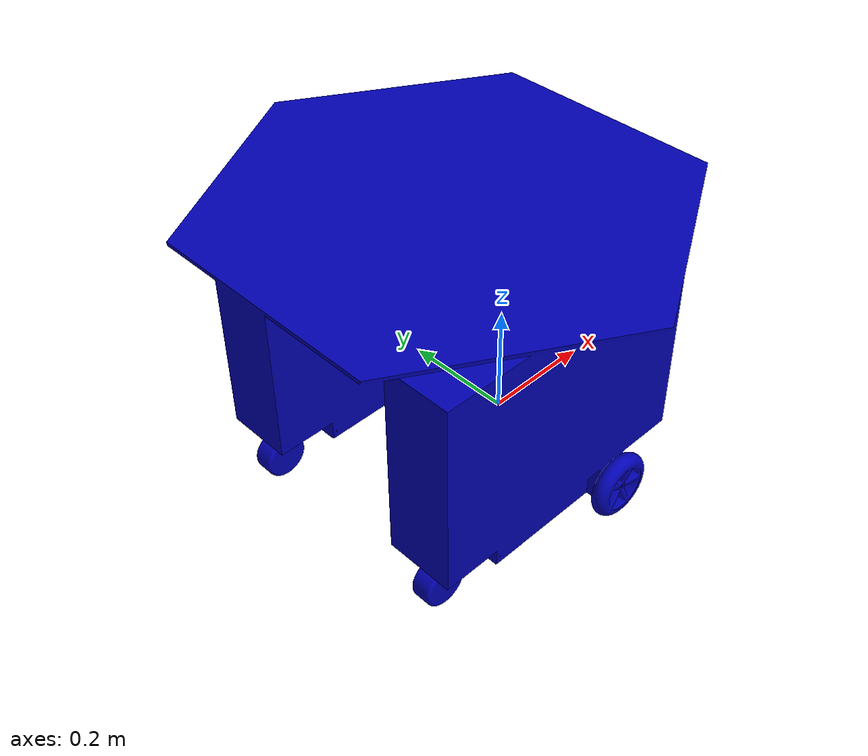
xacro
<?xml version="1.0" ?>
<robot name="robot3"
  xmlns:xacro="http://www.ros.org/wiki/xacro">

  <xacro:include filename="$(find hive_gazebo)/urdf/robot3/robot3_materials.xacro"/>
  <xacro:include filename="$(find hive_gazebo)/urdf/robot3/robot3.trans"/>
  <xacro:include filename="$(find hive_gazebo)/urdf/robot3/robot3.gazebo"/>

  <link name="robot3_base_link">
    <inertial>
      <origin xyz="-0.10420283159261519 -6.650792304374791e-05 0.2749529701185766" rpy="0 0 0"/>
      <mass value="40.0"/>
      <inertia ixx="6.809657" iyy="6.121132" izz="6.33059" ixy="0.000377" iyz="-0.000479" ixz="0.18348"/>
    </inertial>
    <visual>
      <origin xyz="0 0 0" rpy="0 0 0"/>
      <geometry>
        <mesh filename="file://$(find hive_gazebo)/meshes/robots/base_link.stl" scale="0.001 0.001 0.001"/>
      </geometry>
      <material name="blue"/>
    </visual>
    <collision>
      <origin xyz="0 0 0" rpy="0 0 0"/>
      <geometry>
        <mesh filename="file://$(find hive_gazebo)/meshes/robots/base_link.stl" scale="0.001 0.001 0.001"/>
      </geometry>
    </collision>
  </link>

  <link name="robot3_left_wheel">
    <inertial>
      <origin xyz="2.6594023369474935e-07 -0.006200652298741449 -4.894162568547244e-09" rpy="0 0 0"/>
      <mass value="1.3260899817774452"/>
      <inertia ixx="0.001415" iyy="0.002676" izz="0.001415" ixy="-0.0" iyz="0.0" ixz="0.0"/>
    </inertial>
    <visual>
      <origin xyz="1e-06 -0.277578 0.0" rpy="0 0 0"/>
      <geometry>
        <mesh filename="file://$(find hive_gazebo)/meshes/robots/left_wheel_1.stl" scale="0.001 0.001 0.001"/>
      </geometry>
      <material name="blue"/>
    </visual>
    <collision>
      <origin xyz="1e-06 -0.277578 0.0" rpy="0 0 0"/>
      <geometry>
        <mesh filename="file://$(find hive_gazebo)/meshes/robots/left_wheel_1.stl" scale="0.001 0.001 0.001"/>
      </geometry>
    </collision>
  </link>

  <link name="robot3_right_wheel">
    <inertial>
      <origin xyz="2.5883027950490597e-07 0.006201095560612602 -2.8975644106310483e-10" rpy="0 0 0"/>
      <mass value="1.3260894987915728"/>
      <inertia ixx="0.001415" iyy="0.002676" izz="0.001415" ixy="-0.0" iyz="0.0" ixz="-0.0"/>
    </inertial>
    <visual>
      <origin xyz="1e-06 0.269222 0.0" rpy="0 0 0"/>
      <geometry>
        <mesh filename="file://$(find hive_gazebo)/meshes/robots/right_wheel_1.stl" scale="0.001 0.001 0.001"/>
      </geometry>
      <material name="blue"/>
    </visual>
    <collision>
      <origin xyz="1e-06 0.269222 0.0" rpy="0 0 0"/>
      <geometry>
        <mesh filename="file://$(find hive_gazebo)/meshes/robots/right_wheel_1.stl" scale="0.001 0.001 0.001"/>
      </geometry>
    </collision>
  </link>

  <link name="robot3_right_caster">
    <inertial>
      <origin xyz="-0.017519612985357313 2.0677910783639675e-07 -0.05240105157186727" rpy="0 0 0"/>
      <mass value="1.6117875662608887"/>
      <inertia ixx="0.001424" iyy="0.001841" izz="0.000923" ixy="-0.0" iyz="-0.0" ixz="-0.000298"/>
    </inertial>
    <visual>
      <origin xyz="0.310001 0.185822 -0.043" rpy="0 0 0"/>
      <geometry>
        <mesh filename="file://$(find hive_gazebo)/meshes/robots/right_caster_1.stl" scale="0.001 0.001 0.001"/>
      </geometry>
      <material name="blue"/>
    </visual>
    <collision>
      <origin xyz="0.310001 0.185822 -0.043" rpy="0 0 0"/>
      <geometry>
        <mesh filename="file://$(find hive_gazebo)/meshes/robots/right_caster_1.stl" scale="0.001 0.001 0.001"/>
      </geometry>
    </collision>
  </link>

  <link name="robot3_left_caster">
    <inertial>
      <origin xyz="-0.017519612985357313 2.0677910747557426e-07 -0.05240105157186712" rpy="0 0 0"/>
      <mass value="1.6117875662608847"/>
      <inertia ixx="0.001424" iyy="0.001841" izz="0.000923" ixy="-0.0" iyz="-0.0" ixz="-0.000298"/>
    </inertial>
    <visual>
      <origin xyz="0.310001 -0.194178 -0.043" rpy="0 0 0"/>
      <geometry>
        <mesh filename="file://$(find hive_gazebo)/meshes/robots/left_caster_1.stl" scale="0.001 0.001 0.001"/>
      </geometry>
      <material name="blue"/>
    </visual>
    <collision>
      <origin xyz="0.310001 -0.194178 -0.043" rpy="0 0 0"/>
      <geometry>
        <mesh filename="file://$(find hive_gazebo)/meshes/robots/left_caster_1.stl" scale="0.001 0.001 0.001"/>
      </geometry>
    </collision>
  </link>

  <link name="robot3_lidar_link">
    <inertial>
      <origin xyz="-0.0005135302448306955 -0.0001199429580434408 0.02218628196103728" rpy="0 0 0"/>
      <mass value="1.4419128562477859"/>
      <inertia ixx="0.000731" iyy="0.000735" izz="0.000958" ixy="3e-06" iyz="2e-06" ixz="8e-06"/>
    </inertial>
    <visual>
      <origin xyz="0.12 0.0 -0.395" rpy="0 0 0"/>
      <geometry>
        <mesh filename="file://$(find hive_gazebo)/meshes/robots/lidar_link_1.stl" scale="0.001 0.001 0.001"/>
      </geometry>
      <material name="blue"/>
    </visual>
    <collision>
      <origin xyz="0.12 0.0 -0.395" rpy="0 0 0"/>
      <geometry>
        <mesh filename="file://$(find hive_gazebo)/meshes/robots/lidar_link_1.stl" scale="0.001 0.001 0.001"/>
      </geometry>
    </collision>
  </link>

  <link name="robot3_imu_link"/>

  <joint name="robot3_imu_joint" type="fixed">
    <origin xyz="-0.12 0 0.5" rpy="0 0 0"/>
    <parent link="robot3_base_link"/>
    <child link="robot3_imu_link"/>
  </joint>

  <joint name="robot3_left_wheel_joint" type="continuous">
    <origin xyz="-1e-06 0.2734 0.0" rpy="0 0 0"/>
    <parent link="robot3_base_link"/>
    <child link="robot3_left_wheel"/>
    <axis xyz="0.0 1.0 0.0"/>
  </joint>

  <joint name="robot3_right_wheel_joint" type="continuous">
    <origin xyz="-1e-06 -0.2734 0.0" rpy="0 0 0"/>
    <parent link="robot3_base_link"/>
    <child link="robot3_right_wheel"/>
    <axis xyz="0.0 1.0 0.0"/>
  </joint>

  <joint name="robot3_right_caster_joint" type="fixed">
    <origin xyz="-0.31 -0.19 0.043" rpy="0 0 0"/>
    <parent link="robot3_base_link"/>
    <child link="robot3_right_caster"/>
    <axis xyz="0.0 0.0 -1.0"/>
  </joint>

  <joint name="robot3_left_caster_joint" type="fixed">
    <origin xyz="-0.31 0.19 0.043" rpy="0 0 0"/>
    <parent link="robot3_base_link"/>
    <child link="robot3_left_caster"/>
    <axis xyz="0.0 0.0 -1.0"/>
  </joint>

  <joint name="robot3_lidar_joint" type="fixed">
    <origin xyz="-0.12 0.0 0.405" rpy="0 0 0"/>
    <parent link="robot3_base_link"/>
    <child link="robot3_lidar_link"/>
    <axis xyz="-0.0 -0.0 1.0"/>
  </joint>

</robot>

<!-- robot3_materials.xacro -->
<robot name="robot3" xmlns:xacro="http://www.ros.org/wiki/xacro" >

<material name="blue">
  <color rgba="0.000 0.000 0.700 1.000"/>
</material>

</robot>

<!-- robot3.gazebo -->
<robot name="robot3"
  xmlns:xacro="http://www.ros.org/wiki/xacro">

  <xacro:property name="body_color" value="Gazebo/Blue"/>

  <gazebo>
    <plugin name="control" filename="libgazebo_ros_control.so"/>
    <plugin name='robot3_diff_drive' filename='libgazebo_ros_diff_drive.so'>
      <ros>
        <!--cmd_vel and odom name remap-->
        <remapping>cmd_vel:=/robot3/cmd_vel</remapping>
        <remapping>odom:=/robot3/odom</remapping>
      </ros>

      <!-- Wheel Information -->
      <left_joint>robot3_left_wheel_joint</left_joint>
      <right_joint>robot3_right_wheel_joint</right_joint>
      <wheel_separation>0.5336</wheel_separation>
      <wheel_diameter>0.115</wheel_diameter>

      <!-- Limits -->
      <max_wheel_torque>200</max_wheel_torque>
      <max_wheel_acceleration>10.0</max_wheel_acceleration>

      <!-- Output -->
      <odometry_frame>robot3_odom</odometry_frame>
      <robot_base_frame>robot3_base_link</robot_base_frame>

      <publish_odom>true</publish_odom>
      <publish_odom_tf>true</publish_odom_tf>
      <publish_wheel_tf>true</publish_wheel_tf>
    </plugin>
  </gazebo>

  <gazebo reference="robot3_lidar_link">
    <sensor name="laser" type="ray">
      <pose> 0 0 0 0 0 0 </pose>
      <always_on>true</always_on>
      <visualize>true</visualize>
      <update_rate>10</update_rate>
      <ray>
        <scan>
          <horizontal>
            <samples>360</samples>
            <min_angle>-3.141592</min_angle>
            <max_angle>3.141592</max_angle>
          </horizontal>
        </scan>
        <range>
          <min>0.1</min>
          <max>12</max>
        </range>
      </ray>
      <plugin name="robot3_laser_controller" filename="libgazebo_ros_ray_sensor.so">
        <ros>
          <remapping>~/out:=/robot3/scan</remapping>
        </ros>
        <output_type>sensor_msgs/LaserScan</output_type>
        <frame_name>robot3_lidar_link</frame_name>
      </plugin>
    </sensor>
  </gazebo>

  <gazebo reference="robot3_imu_link">
    <gravity>true</gravity>
    <sensor name="imu_sensor" type="imu">
      <always_on>true</always_on>
      <update_rate>100</update_rate>
      <visualize>true</visualize>
      <topic>__default_topic__</topic>
      <plugin name="robot3_imu_plugin" filename="libgazebo_ros_imu_sensor.so">
        <ros>
          <remapping>~/out:=/robot3/imu</remapping>
        </ros>
        <bodyName>robot3_imu_link</bodyName>
        <updateRateHZ>10.0</updateRateHZ>
        <gaussianNoise>0.0</gaussianNoise>
        <xyzOffset>0 0 0</xyzOffset>
        <rpyOffset>0 0 0</rpyOffset>
        <frameName>robot3_imu_link</frameName>
        <initialOrientationAsReference>false</initialOrientationAsReference>
      </plugin>
      <pose>0 0 0 0 0 0</pose>
    </sensor>
  </gazebo>

  <gazebo reference="robot3_base_link">
    <material>${body_color}</material>
    <self_collide>true</self_collide>
    <gravity>true</gravity>
  </gazebo>

  <gazebo reference="robot3_left_wheel">
    <material>${body_color}</material>
    <mu1>1.0</mu1>
    <mu2>1.0</mu2>
    <self_collide>true</self_collide>
  </gazebo>

  <gazebo reference="robot3_right_wheel">
    <material>${body_color}</material>
    <mu1>1.0</mu1>
    <mu2>1.0</mu2>
    <self_collide>true</self_collide>
  </gazebo>

  <gazebo reference="robot3_right_caster">
    <material>${body_color}</material>
    <mu1>0.05</mu1>
    <mu2>0.05</mu2>
    <self_collide>true</self_collide>
  </gazebo>

  <gazebo reference="robot3_left_caster">
    <material>${body_color}</material>
    <mu1>0.05</mu1>
    <mu2>0.05</mu2>
    <self_collide>true</self_collide>
  </gazebo>
</robot>
